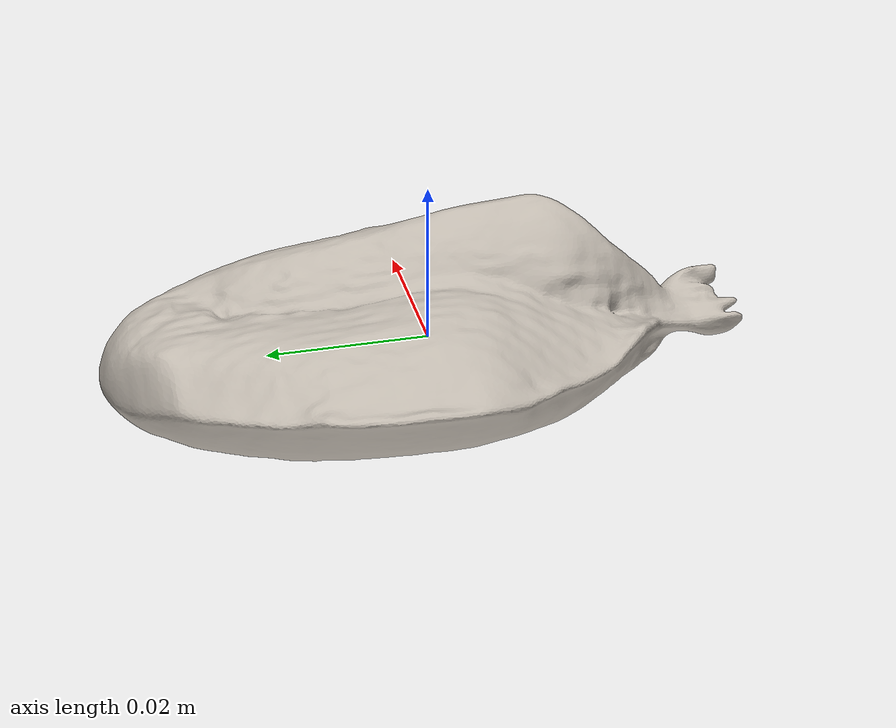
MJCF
<?xml version='1.0' encoding='utf-8'?>
<mujoco model="chicken_breast_3">
  <asset>
    <texture file="ceramic.png" name="tex-chicken_breast_3" type="2d" />
    <material name="chicken_breast_3" reflectance="0.5" texrepeat="1 1" texture="tex-chicken_breast_3" texuniform="false" />
    <mesh file="visual/model_normalized_0.obj" name="model_normalized_0_vis" scale="0.08 0.08 0.08" refquat="0.6532814824381888 0.6532814824381888 0.2705980500730988 0.2705980500730988" />
    <mesh file="collision/model_normalized_collision_13.obj" name="model_normalized_collision_13._coll" scale="0.08 0.08 0.08" refquat="0.6532814824381888 0.6532814824381888 0.2705980500730988 0.2705980500730988" />
    <mesh file="collision/model_normalized_collision_15.obj" name="model_normalized_collision_15._coll" scale="0.08 0.08 0.08" refquat="0.6532814824381888 0.6532814824381888 0.2705980500730988 0.2705980500730988" />
    <mesh file="collision/model_normalized_collision_10.obj" name="model_normalized_collision_10._coll" scale="0.08 0.08 0.08" refquat="0.6532814824381888 0.6532814824381888 0.2705980500730988 0.2705980500730988" />
    <mesh file="collision/model_normalized_collision_26.obj" name="model_normalized_collision_26._coll" scale="0.08 0.08 0.08" refquat="0.6532814824381888 0.6532814824381888 0.2705980500730988 0.2705980500730988" />
    <mesh file="collision/model_normalized_collision_25.obj" name="model_normalized_collision_25._coll" scale="0.08 0.08 0.08" refquat="0.6532814824381888 0.6532814824381888 0.2705980500730988 0.2705980500730988" />
    <mesh file="collision/model_normalized_collision_5.obj" name="model_normalized_collision_5._coll" scale="0.08 0.08 0.08" refquat="0.6532814824381888 0.6532814824381888 0.2705980500730988 0.2705980500730988" />
    <mesh file="collision/model_normalized_collision_31.obj" name="model_normalized_collision_31._coll" scale="0.08 0.08 0.08" refquat="0.6532814824381888 0.6532814824381888 0.2705980500730988 0.2705980500730988" />
    <mesh file="collision/model_normalized_collision_3.obj" name="model_normalized_collision_3._coll" scale="0.08 0.08 0.08" refquat="0.6532814824381888 0.6532814824381888 0.2705980500730988 0.2705980500730988" />
    <mesh file="collision/model_normalized_collision_14.obj" name="model_normalized_collision_14._coll" scale="0.08 0.08 0.08" refquat="0.6532814824381888 0.6532814824381888 0.2705980500730988 0.2705980500730988" />
    <mesh file="collision/model_normalized_collision_28.obj" name="model_normalized_collision_28._coll" scale="0.08 0.08 0.08" refquat="0.6532814824381888 0.6532814824381888 0.2705980500730988 0.2705980500730988" />
    <mesh file="collision/model_normalized_collision_11.obj" name="model_normalized_collision_11._coll" scale="0.08 0.08 0.08" refquat="0.6532814824381888 0.6532814824381888 0.2705980500730988 0.2705980500730988" />
    <mesh file="collision/model_normalized_collision_29.obj" name="model_normalized_collision_29._coll" scale="0.08 0.08 0.08" refquat="0.6532814824381888 0.6532814824381888 0.2705980500730988 0.2705980500730988" />
    <mesh file="collision/model_normalized_collision_24.obj" name="model_normalized_collision_24._coll" scale="0.08 0.08 0.08" refquat="0.6532814824381888 0.6532814824381888 0.2705980500730988 0.2705980500730988" />
    <mesh file="collision/model_normalized_collision_1.obj" name="model_normalized_collision_1._coll" scale="0.08 0.08 0.08" refquat="0.6532814824381888 0.6532814824381888 0.2705980500730988 0.2705980500730988" />
    <mesh file="collision/model_normalized_collision_0.obj" name="model_normalized_collision_0._coll" scale="0.08 0.08 0.08" refquat="0.6532814824381888 0.6532814824381888 0.2705980500730988 0.2705980500730988" />
    <mesh file="collision/model_normalized_collision_27.obj" name="model_normalized_collision_27._coll" scale="0.08 0.08 0.08" refquat="0.6532814824381888 0.6532814824381888 0.2705980500730988 0.2705980500730988" />
    <mesh file="collision/model_normalized_collision_9.obj" name="model_normalized_collision_9._coll" scale="0.08 0.08 0.08" refquat="0.6532814824381888 0.6532814824381888 0.2705980500730988 0.2705980500730988" />
    <mesh file="collision/model_normalized_collision_19.obj" name="model_normalized_collision_19._coll" scale="0.08 0.08 0.08" refquat="0.6532814824381888 0.6532814824381888 0.2705980500730988 0.2705980500730988" />
    <mesh file="collision/model_normalized_collision_21.obj" name="model_normalized_collision_21._coll" scale="0.08 0.08 0.08" refquat="0.6532814824381888 0.6532814824381888 0.2705980500730988 0.2705980500730988" />
    <mesh file="collision/model_normalized_collision_30.obj" name="model_normalized_collision_30._coll" scale="0.08 0.08 0.08" refquat="0.6532814824381888 0.6532814824381888 0.2705980500730988 0.2705980500730988" />
    <mesh file="collision/model_normalized_collision_20.obj" name="model_normalized_collision_20._coll" scale="0.08 0.08 0.08" refquat="0.6532814824381888 0.6532814824381888 0.2705980500730988 0.2705980500730988" />
    <mesh file="collision/model_normalized_collision_2.obj" name="model_normalized_collision_2._coll" scale="0.08 0.08 0.08" refquat="0.6532814824381888 0.6532814824381888 0.2705980500730988 0.2705980500730988" />
    <mesh file="collision/model_normalized_collision_7.obj" name="model_normalized_collision_7._coll" scale="0.08 0.08 0.08" refquat="0.6532814824381888 0.6532814824381888 0.2705980500730988 0.2705980500730988" />
    <mesh file="collision/model_normalized_collision_22.obj" name="model_normalized_collision_22._coll" scale="0.08 0.08 0.08" refquat="0.6532814824381888 0.6532814824381888 0.2705980500730988 0.2705980500730988" />
    <mesh file="collision/model_normalized_collision_16.obj" name="model_normalized_collision_16._coll" scale="0.08 0.08 0.08" refquat="0.6532814824381888 0.6532814824381888 0.2705980500730988 0.2705980500730988" />
    <mesh file="collision/model_normalized_collision_8.obj" name="model_normalized_collision_8._coll" scale="0.08 0.08 0.08" refquat="0.6532814824381888 0.6532814824381888 0.2705980500730988 0.2705980500730988" />
    <mesh file="collision/model_normalized_collision_6.obj" name="model_normalized_collision_6._coll" scale="0.08 0.08 0.08" refquat="0.6532814824381888 0.6532814824381888 0.2705980500730988 0.2705980500730988" />
    <mesh file="collision/model_normalized_collision_18.obj" name="model_normalized_collision_18._coll" scale="0.08 0.08 0.08" refquat="0.6532814824381888 0.6532814824381888 0.2705980500730988 0.2705980500730988" />
    <mesh file="collision/model_normalized_collision_17.obj" name="model_normalized_collision_17._coll" scale="0.08 0.08 0.08" refquat="0.6532814824381888 0.6532814824381888 0.2705980500730988 0.2705980500730988" />
    <mesh file="collision/model_normalized_collision_12.obj" name="model_normalized_collision_12._coll" scale="0.08 0.08 0.08" refquat="0.6532814824381888 0.6532814824381888 0.2705980500730988 0.2705980500730988" />
    <mesh file="collision/model_normalized_collision_4.obj" name="model_normalized_collision_4._coll" scale="0.08 0.08 0.08" refquat="0.6532814824381888 0.6532814824381888 0.2705980500730988 0.2705980500730988" />
    <mesh file="collision/model_normalized_collision_23.obj" name="model_normalized_collision_23._coll" scale="0.08 0.08 0.08" refquat="0.6532814824381888 0.6532814824381888 0.2705980500730988 0.2705980500730988" />
    <texture type="2d" name="2164d57d9efa_chicken_breast__3d__texture_kd" file="visual/2164d57d9efa_chicken_breast__3d__texture_kd.png" />
    <material name="Material_0" texture="2164d57d9efa_chicken_breast__3d__texture_kd" specular="0.5" shininess="0.5" />
  </asset>
  <default>
    <default class="region">
      <geom group="1" conaffinity="0" contype="0" rgba="0 1 0 0" />
    </default>
  </default>
  <worldbody>
    <body>
      <body name="object">
        <geom solimp="0.998 0.998 0.001" solref="0.001 1" density="100" friction="0.95 0.3 0.1" type="mesh" mesh="model_normalized_0_vis" conaffinity="0" contype="0" group="1" material="Material_0" />
        <geom solimp="0.998 0.998 0.001" solref="0.001 1" density="100" friction="0.95 0.3 0.1" type="mesh" mesh="model_normalized_collision_13._coll" group="0" rgba="0.8 0.8 0.8 0.0" />
        <geom solimp="0.998 0.998 0.001" solref="0.001 1" density="100" friction="0.95 0.3 0.1" type="mesh" mesh="model_normalized_collision_15._coll" group="0" rgba="0.8 0.8 0.8 0.0" />
        <geom solimp="0.998 0.998 0.001" solref="0.001 1" density="100" friction="0.95 0.3 0.1" type="mesh" mesh="model_normalized_collision_10._coll" group="0" rgba="0.8 0.8 0.8 0.0" />
        <geom solimp="0.998 0.998 0.001" solref="0.001 1" density="100" friction="0.95 0.3 0.1" type="mesh" mesh="model_normalized_collision_26._coll" group="0" rgba="0.8 0.8 0.8 0.0" />
        <geom solimp="0.998 0.998 0.001" solref="0.001 1" density="100" friction="0.95 0.3 0.1" type="mesh" mesh="model_normalized_collision_25._coll" group="0" rgba="0.8 0.8 0.8 0.0" />
        <geom solimp="0.998 0.998 0.001" solref="0.001 1" density="100" friction="0.95 0.3 0.1" type="mesh" mesh="model_normalized_collision_5._coll" group="0" rgba="0.8 0.8 0.8 0.0" />
        <geom solimp="0.998 0.998 0.001" solref="0.001 1" density="100" friction="0.95 0.3 0.1" type="mesh" mesh="model_normalized_collision_31._coll" group="0" rgba="0.8 0.8 0.8 0.0" />
        <geom solimp="0.998 0.998 0.001" solref="0.001 1" density="100" friction="0.95 0.3 0.1" type="mesh" mesh="model_normalized_collision_3._coll" group="0" rgba="0.8 0.8 0.8 0.0" />
        <geom solimp="0.998 0.998 0.001" solref="0.001 1" density="100" friction="0.95 0.3 0.1" type="mesh" mesh="model_normalized_collision_14._coll" group="0" rgba="0.8 0.8 0.8 0.0" />
        <geom solimp="0.998 0.998 0.001" solref="0.001 1" density="100" friction="0.95 0.3 0.1" type="mesh" mesh="model_normalized_collision_28._coll" group="0" rgba="0.8 0.8 0.8 0.0" />
        <geom solimp="0.998 0.998 0.001" solref="0.001 1" density="100" friction="0.95 0.3 0.1" type="mesh" mesh="model_normalized_collision_11._coll" group="0" rgba="0.8 0.8 0.8 0.0" />
        <geom solimp="0.998 0.998 0.001" solref="0.001 1" density="100" friction="0.95 0.3 0.1" type="mesh" mesh="model_normalized_collision_29._coll" group="0" rgba="0.8 0.8 0.8 0.0" />
        <geom solimp="0.998 0.998 0.001" solref="0.001 1" density="100" friction="0.95 0.3 0.1" type="mesh" mesh="model_normalized_collision_24._coll" group="0" rgba="0.8 0.8 0.8 0.0" />
        <geom solimp="0.998 0.998 0.001" solref="0.001 1" density="100" friction="0.95 0.3 0.1" type="mesh" mesh="model_normalized_collision_1._coll" group="0" rgba="0.8 0.8 0.8 0.0" />
        <geom solimp="0.998 0.998 0.001" solref="0.001 1" density="100" friction="0.95 0.3 0.1" type="mesh" mesh="model_normalized_collision_0._coll" group="0" rgba="0.8 0.8 0.8 0.0" />
        <geom solimp="0.998 0.998 0.001" solref="0.001 1" density="100" friction="0.95 0.3 0.1" type="mesh" mesh="model_normalized_collision_27._coll" group="0" rgba="0.8 0.8 0.8 0.0" />
        <geom solimp="0.998 0.998 0.001" solref="0.001 1" density="100" friction="0.95 0.3 0.1" type="mesh" mesh="model_normalized_collision_9._coll" group="0" rgba="0.8 0.8 0.8 0.0" />
        <geom solimp="0.998 0.998 0.001" solref="0.001 1" density="100" friction="0.95 0.3 0.1" type="mesh" mesh="model_normalized_collision_19._coll" group="0" rgba="0.8 0.8 0.8 0.0" />
        <geom solimp="0.998 0.998 0.001" solref="0.001 1" density="100" friction="0.95 0.3 0.1" type="mesh" mesh="model_normalized_collision_21._coll" group="0" rgba="0.8 0.8 0.8 0.0" />
        <geom solimp="0.998 0.998 0.001" solref="0.001 1" density="100" friction="0.95 0.3 0.1" type="mesh" mesh="model_normalized_collision_30._coll" group="0" rgba="0.8 0.8 0.8 0.0" />
        <geom solimp="0.998 0.998 0.001" solref="0.001 1" density="100" friction="0.95 0.3 0.1" type="mesh" mesh="model_normalized_collision_20._coll" group="0" rgba="0.8 0.8 0.8 0.0" />
        <geom solimp="0.998 0.998 0.001" solref="0.001 1" density="100" friction="0.95 0.3 0.1" type="mesh" mesh="model_normalized_collision_2._coll" group="0" rgba="0.8 0.8 0.8 0.0" />
        <geom solimp="0.998 0.998 0.001" solref="0.001 1" density="100" friction="0.95 0.3 0.1" type="mesh" mesh="model_normalized_collision_7._coll" group="0" rgba="0.8 0.8 0.8 0.0" />
        <geom solimp="0.998 0.998 0.001" solref="0.001 1" density="100" friction="0.95 0.3 0.1" type="mesh" mesh="model_normalized_collision_22._coll" group="0" rgba="0.8 0.8 0.8 0.0" />
        <geom solimp="0.998 0.998 0.001" solref="0.001 1" density="100" friction="0.95 0.3 0.1" type="mesh" mesh="model_normalized_collision_16._coll" group="0" rgba="0.8 0.8 0.8 0.0" />
        <geom solimp="0.998 0.998 0.001" solref="0.001 1" density="100" friction="0.95 0.3 0.1" type="mesh" mesh="model_normalized_collision_8._coll" group="0" rgba="0.8 0.8 0.8 0.0" />
        <geom solimp="0.998 0.998 0.001" solref="0.001 1" density="100" friction="0.95 0.3 0.1" type="mesh" mesh="model_normalized_collision_6._coll" group="0" rgba="0.8 0.8 0.8 0.0" />
        <geom solimp="0.998 0.998 0.001" solref="0.001 1" density="100" friction="0.95 0.3 0.1" type="mesh" mesh="model_normalized_collision_18._coll" group="0" rgba="0.8 0.8 0.8 0.0" />
        <geom solimp="0.998 0.998 0.001" solref="0.001 1" density="100" friction="0.95 0.3 0.1" type="mesh" mesh="model_normalized_collision_17._coll" group="0" rgba="0.8 0.8 0.8 0.0" />
        <geom solimp="0.998 0.998 0.001" solref="0.001 1" density="100" friction="0.95 0.3 0.1" type="mesh" mesh="model_normalized_collision_12._coll" group="0" rgba="0.8 0.8 0.8 0.0" />
        <geom solimp="0.998 0.998 0.001" solref="0.001 1" density="100" friction="0.95 0.3 0.1" type="mesh" mesh="model_normalized_collision_4._coll" group="0" rgba="0.8 0.8 0.8 0.0" />
        <geom solimp="0.998 0.998 0.001" solref="0.001 1" density="100" friction="0.95 0.3 0.1" type="mesh" mesh="model_normalized_collision_23._coll" group="0" rgba="0.8 0.8 0.8 0.0" />
        <geom class="region" name="reg_bbox" type="box" pos="0.00018616197462384854 4.454203628156961e-10 -0.00039363198273803524" size="0.029327533179694915 0.0406060601876686 0.01799908211761249" />
      </body>
    <site rgba="0 0 0 0" size="0.005" pos="0 0 -0.018392714" name="bottom_site" /><site rgba="0 0 0 0" size="0.005" pos="0 0 0.01760545" name="top_site" /><site rgba="0 0 0 0" size="0.005" pos="0.040606061 0.040606061 0" name="horizontal_radius_site" /></body>
  </worldbody>
</mujoco>
